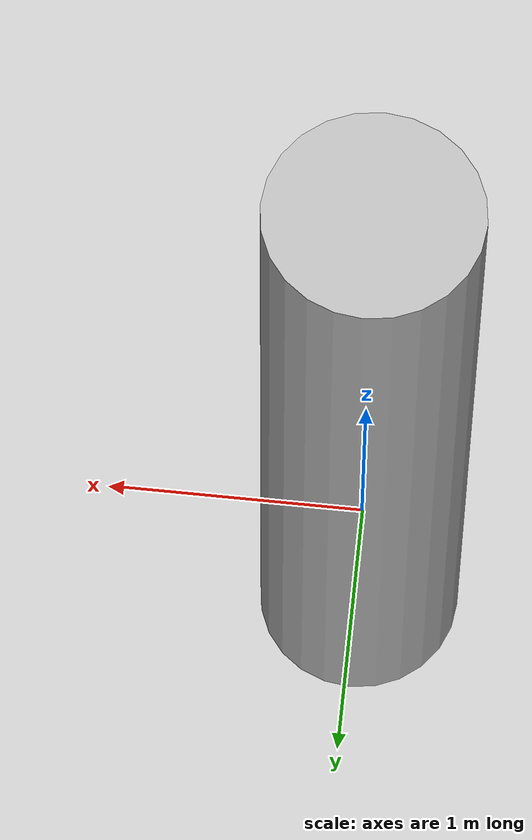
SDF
<?xml version='1.0'?>
<sdf version="1.4">
<model name="human_ellipse">
  <pose>0.0 0 0.9 0 0 0</pose>
  <static>true</static>
    <link name="link">
      <inertial>
        <mass>1000.0</mass>
        <inertia> <!-- Look up -->
          <!-- http://gazebosim.org/tutorials?tut=inertia&cat=build_robot -->
          <ixx>83</ixx>       <!-- for a box: ixx = 0.083 * mass * (y*y + z*z) -->
          <ixy>0.0</ixy>         <!-- for a box: ixy = 0 -->
          <ixz>0.0</ixz>         <!-- for a box: ixz = 0 -->
          <iyy>83</iyy>       <!-- for a box: iyy = 0.083 * mass * (x*x + z*z) -->
          <iyz>0.0</iyz>         <!-- for a box: iyz = 0 -->
          <izz>83</izz>       <!-- for a box: izz = 0.083 * mass * (x*x + y*y) -->
        </inertia>
      </inertial>
      <collision name="collision">
          <geometry>
            <cylinder>
            <length>3.6</length>
            <radius>0.3</radius>
          </cylinder>
          <sphere>
            <radius>.4</radius>
          </sphere>
        </geometry>
      </collision>
      <visual name="visual">
        <geometry>
          <cylinder>
            <length>3.6</length>
            <radius>0.4</radius>
          </cylinder>
        </geometry>
      </visual>
    </link>
  </model>
</sdf>
